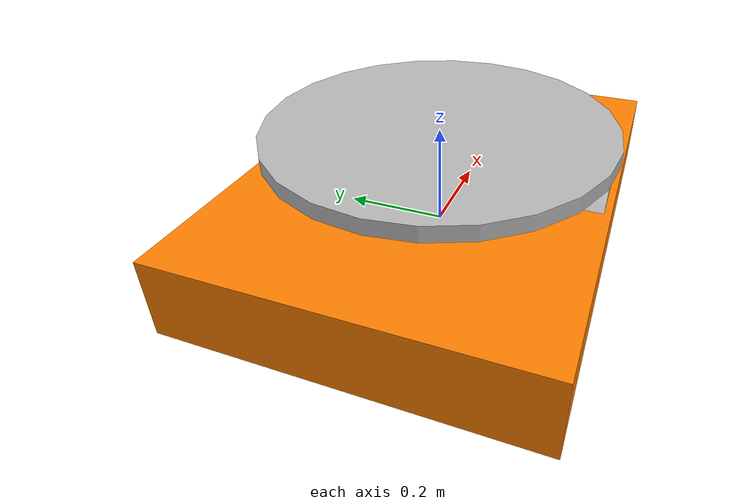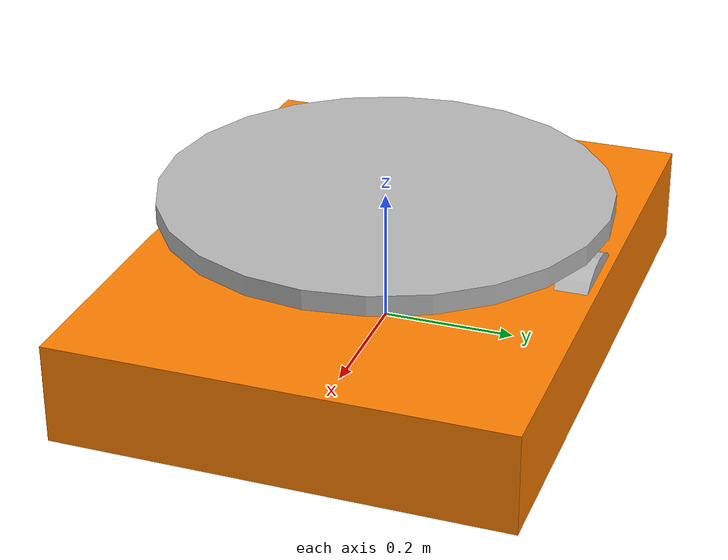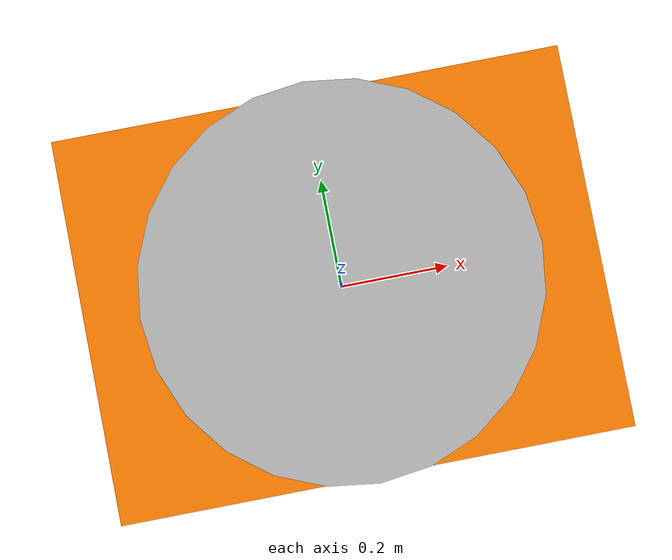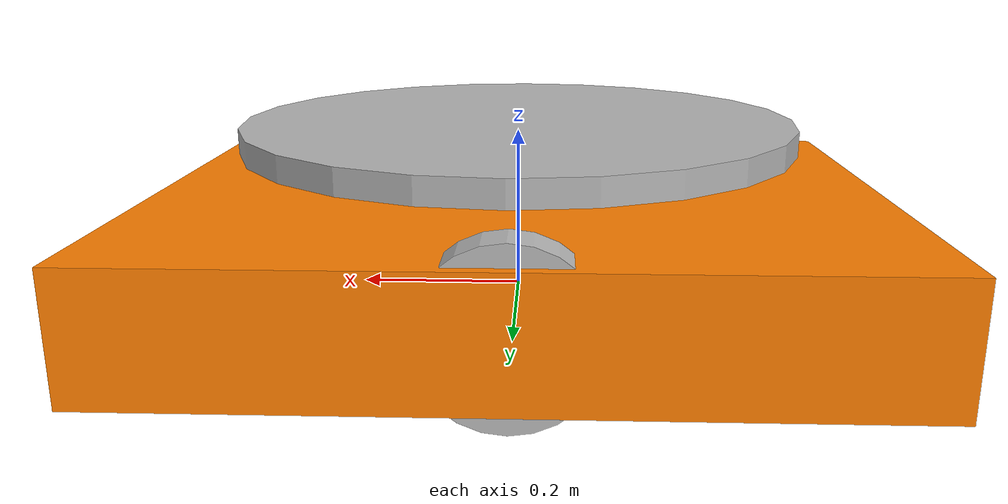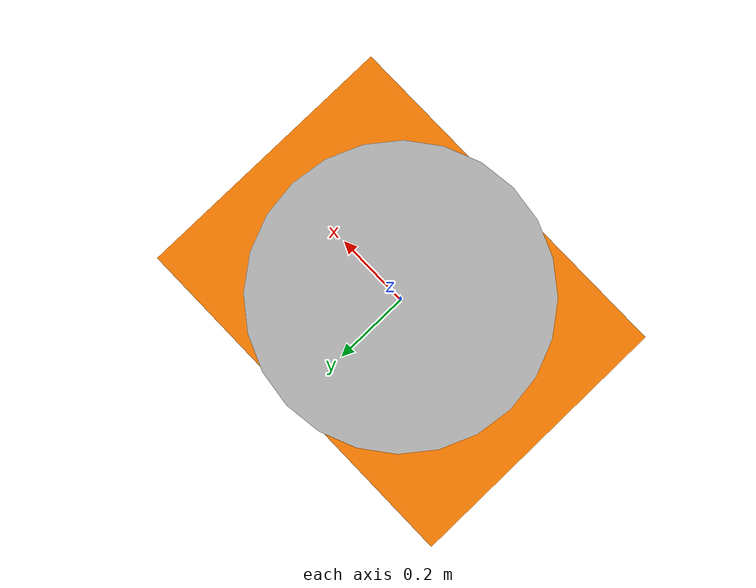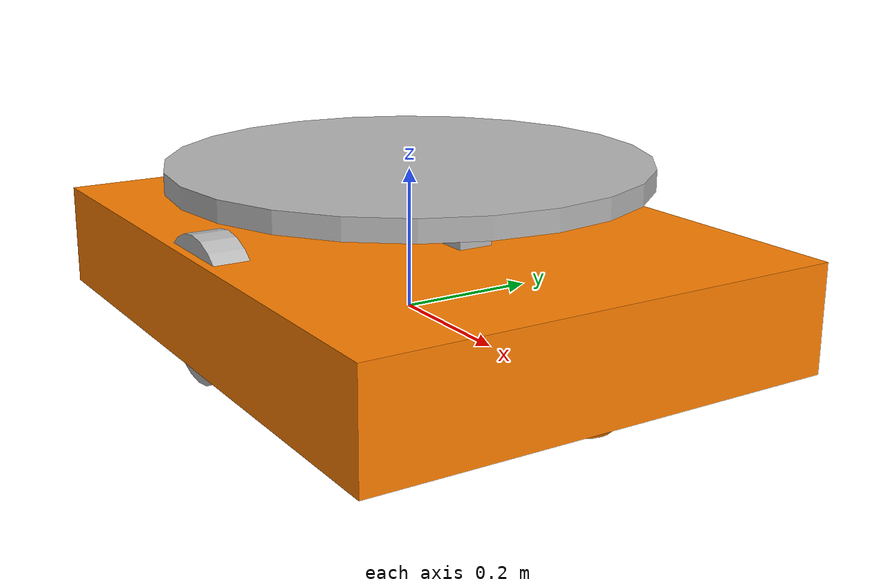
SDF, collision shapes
<?xml version="1.0" encoding="UTF-8"?>

<sdf version="1.4">
   <model name="amazon_warehouse_robot">
      <static>false</static>

      <link name="base_link">
         <pose>0 0 .05 0 0 0</pose>
         <inertial>
            <inertia>
               <ixx>0</ixx>
               <iyy>0</iyy>
               <izz>0</izz>
               <ixy>0</ixy>
               <ixz>0</ixz>
               <iyz>0</iyz>
            </inertia>
            <mass>4.5</mass>
         </inertial>
         <collision name="collision">
            <geometry>
               <box>
                  <size>.9 .675 .15</size>
               </box>
            </geometry>
         </collision>
         <visual name="visual">
            <geometry>
               <box>
                  <size>.9 .675 .15</size>
               </box>
            </geometry>
            <material>
               <ambient>1 0.5 0 1</ambient>
               <diffuse>1 0.5 0 1</diffuse>
               <specular>0.1 0.1 0.1 1</specular>
               <emissive>0 0 0 0</emissive>
            </material>
         </visual>
         <collision name="caster_collision_front">
            <pose>0.40 0 -0.05 0 0 0</pose>
            <geometry>
               <sphere>
                  <radius>.05</radius>
               </sphere>
            </geometry>
            <surface>
               <friction>
                  <ode>
                     <mu>0.0</mu>
                     <mu2>0.0</mu2>
                     <slip1>0.0</slip1>
                     <slip2>0.0</slip2>
                  </ode>
               </friction>
            </surface>
         </collision>
         <visual name="caster_visual_front">
            <pose>0.40 0 -0.05 0 0 0</pose>
            <geometry>
               <sphere>
                  <radius>.05</radius>
               </sphere>
            </geometry>
         </visual>
         <collision name="caster_collision_back">
            <pose>-0.40 0 -0.05 0 0 0</pose>
            <geometry>
               <sphere>
                  <radius>.05</radius>
               </sphere>
            </geometry>
            <surface>
               <friction>
                  <ode>
                     <mu>0.0</mu>
                     <mu2>0.0</mu2>
                     <slip1>0.0</slip1>
                     <slip2>0.0</slip2>
                  </ode>
               </friction>
            </surface>
         </collision>
         <visual name="caster_visual_back">
            <pose>-0.40 0 -0.05 0 0 0</pose>
            <geometry>
               <sphere>
                  <radius>.05</radius>
               </sphere>
            </geometry>
         </visual>
      </link>

      <link name="left_wheel">
         <pose>0 0.30 0.05 0 1.5707 1.5707</pose>
         <collision name="collision">
            <geometry>
               <cylinder>
                  <radius>.1</radius>
                  <length>.05</length>
               </cylinder>
            </geometry>
         </collision>
         <visual name="visual">
            <geometry>
               <cylinder>
                  <radius>.1</radius>
                  <length>.05</length>
               </cylinder>
            </geometry>
         </visual>
      </link>

      <link name="right_wheel">
         <pose>0 -0.30 0.05 0 1.5707 1.5707</pose>
         <collision name="collision">
            <geometry>
               <cylinder>
                  <radius>.1</radius>
                  <length>.05</length>
               </cylinder>
            </geometry>
         </collision>
         <visual name="visual">
            <geometry>
               <cylinder>
                  <radius>.1</radius>
                  <length>.05</length>
               </cylinder>
            </geometry>
         </visual>
      </link>

      <!-- Hokuyo laser -->
      <link name="laser">
         <pose>0.139000 0.000000 0.15 0.000000 0.000000 0.000000</pose>
         <gravity>0</gravity>
         <inertial>
            <mass>0.100000</mass>
            <inertia>
               <ixx>1.000000</ixx>
               <ixy>0.000000</ixy>
               <ixz>0.000000</ixz>
               <iyy>1.000000</iyy>
               <iyz>0.000000</iyz>
               <izz>1.000000</izz>
            </inertia>
         </inertial>
         <visual name="visual">
            <geometry>
               <mesh>
                  <uri>model://hokuyo/meshes/hokuyo.dae</uri>
               </mesh>
            </geometry>
         </visual>

         <collision name="collision-base">
            <pose>0.000000 0.000000 -0.014500 0.000000 0.000000 0.000000</pose>
            <geometry>
               <box>
                  <size>0.050000 0.050000 0.041000</size>
               </box>
            </geometry>
            <max_contacts>10</max_contacts>
         </collision>
         <collision name="collision-top">
            <pose>0.000000 0.000000 0.020500 0.000000 0.000000 0.000000</pose>
            <geometry>
               <cylinder>
                  <radius>0.021000</radius>
                  <length>0.029000</length>
               </cylinder>
            </geometry>
            <max_contacts>10</max_contacts>
         </collision>

         <sensor name="laser" type="ray">
            <ray>
               <scan>
                  <horizontal>
                     <samples>180</samples>
                     <resolution>1.000000</resolution>
                     <min_angle>-1.570000</min_angle>
                     <max_angle>1.570000</max_angle>
                  </horizontal>
               </scan>
               <range>
                  <min>0.080000</min>
                  <max>5.000000</max>
                  <resolution>0.010000</resolution>
               </range>
            </ray>
            <update_rate>20.000000</update_rate>
            <always_on>1</always_on>
            <visualize>1</visualize>

            <plugin name="gazebo_ros_head_hokuyo_controller" filename="libgazebo_ros_laser.so">
               <topicName>laser/scan</topicName>
               <frameName>hokuyo_link</frameName>
               <robotNamespace></robotNamespace>
            </plugin>
         </sensor>

         <velocity_decay>
            <linear>0.000000</linear>
            <angular>0.000000</angular>
         </velocity_decay>
         <self_collide>0</self_collide>
         <kinematic>0</kinematic>
      </link>

      <!-- Lift platform -->
      <link name="top_lift">
         <pose>0 0 0.2 0 0 0</pose>
         <collision name="collision">
            <geometry>
               <cylinder>
                  <radius>.3375</radius>
                  <length>.03</length>
               </cylinder>
            </geometry>
            <surface>
               <friction>
                  <ode>
                     <mu>Inf</mu>
                     <mu2>Inf</mu2>
                     <slip1>0.0</slip1>
                     <slip2>0.0</slip2>
                  </ode>
               </friction>
            </surface>
         </collision>
         <visual name="visual">
            <geometry>
               <cylinder>
                  <radius>.3375</radius>
                  <length>.03</length>
               </cylinder>
            </geometry>
         </visual>
      </link>

      <!-- Prismatic joint -->
      <joint type="prismatic" name="top_joint_lift_hinge">
         <pose>0 0 0.2 0 0 0</pose>
         <child>top_lift</child>
         <parent>base_link</parent>
         <axis>
            <xyz>0 0 1</xyz>
            <limit>
               <upper>0.1</upper>
               <lower>0</lower>
            </limit>
         </axis>
      </joint>
      <!-- Screw rotate ends here -->

      <joint type="revolute" name="left_wheel_joint">
         <pose>0 0 -0.03 0 0 0</pose>
         <child>left_wheel</child>
         <parent>base_link</parent>
         <axis>
            <xyz>0 1 0</xyz>
         </axis>
      </joint>

      <joint type="revolute" name="right_wheel_joint">
         <pose>0 0 0.03 0 0 0</pose>
         <child>right_wheel</child>
         <parent>base_link</parent>
         <axis>
            <xyz>0 1 0</xyz>
         </axis>
      </joint>

      <joint name="joint_laser" type="fixed">
         <parent>base_link</parent>
         <child>laser</child>
         <axis>
            <xyz>0.000000 0.000000 0.000000</xyz>
            <limit>
               <lower>0.000000</lower>
               <upper>0.000000</upper>
            </limit>
         </axis>
      </joint>

      <!-- Attach the screw plugin to this model-->
      <plugin name="amazon_warehouse" filename="libamazon_warehouse.so">
      	<jointForce>0</jointForce>
      </plugin>

      <plugin name="p3d_base_controller" filename="libgazebo_ros_p3d.so">
        <alwaysOn>true</alwaysOn>
        <updateRate>50.0</updateRate>
        <bodyName>base_link</bodyName>
        <topicName>ground_truth/state</topicName>
        <gaussianNoise>0.01</gaussianNoise>
        <frameName>world</frameName>
        <xyzOffsets>0 0 0</xyzOffsets>
        <rpyOffsets>0 0 0</rpyOffsets>
      </plugin>

      <!-- Attach the ROS Differential Drive Plugin to this model> -->
      <plugin name="differential_drive_controller" filename="libgazebo_ros_diff_drive.so">
         <robotNamespace />
         <alwaysOn>true</alwaysOn>
         <updateRate>10</updateRate>
         <legacyMode>true</legacyMode>
         <leftJoint>right_wheel_joint</leftJoint>
         <rightJoint>left_wheel_joint</rightJoint>
         <wheelSeparation>0.5380</wheelSeparation>
         <wheelDiameter>0.2410</wheelDiameter>
         <torque>20</torque>
         <commandTopic>cmd_vel</commandTopic>
         <odometryTopic>odom</odometryTopic>
         <odometryFrame>odom</odometryFrame>
         <robotBaseFrame>base_link</robotBaseFrame>
         <publishWheelTF>false</publishWheelTF>
         <publishWheelJointState>false</publishWheelJointState>
         <rosDebugLevel>na</rosDebugLevel>
         <wheelAcceleration>0</wheelAcceleration>
         <wheelTorque>5</wheelTorque>
         <odometrySource>world</odometrySource>
         <publishTf>1</publishTf>
      </plugin>

   </model>
</sdf>
